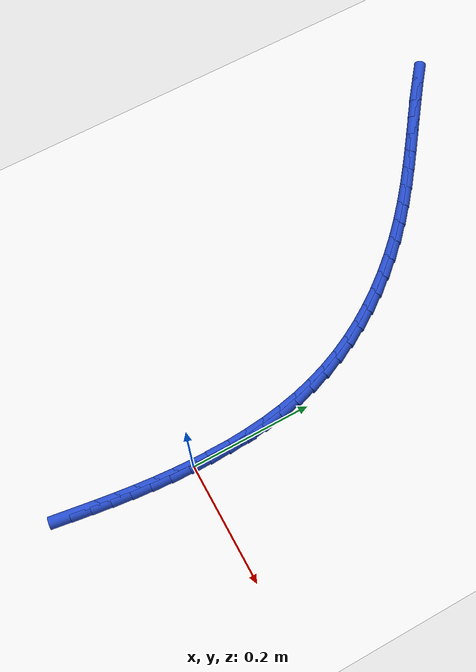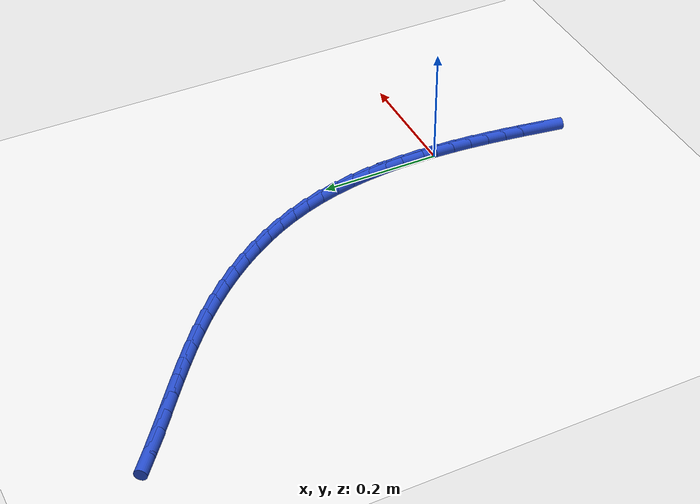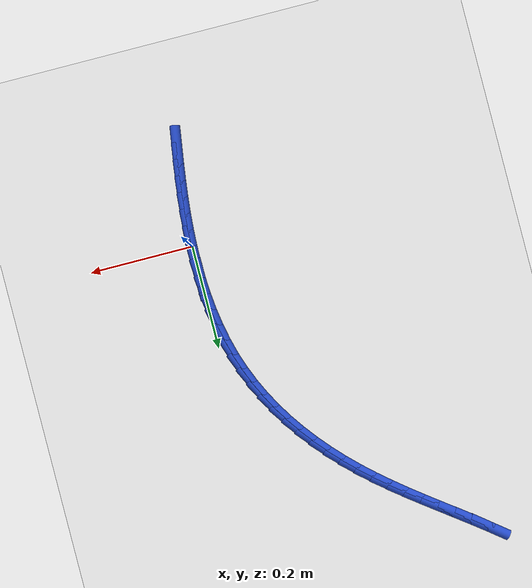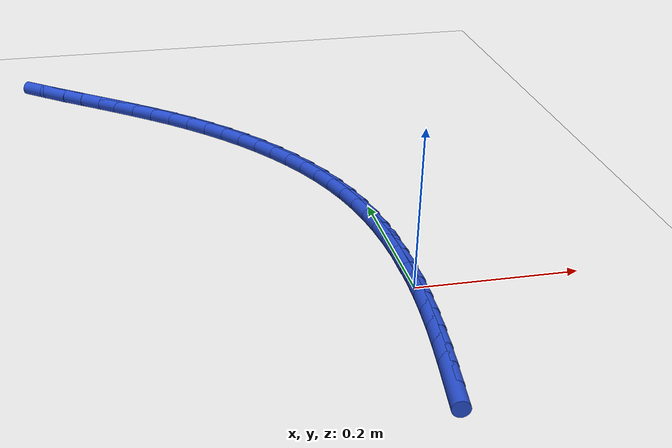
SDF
<sdf version="1.6">
 <world name="default">
  <model name="ground_plane">
   <static>1</static>
   <link name="link">
    <collision name="collision">
     <geometry><plane><normal>0 0 1</normal><size>100 100</size></plane></geometry>
     <surface><friction><ode><mu>100</mu><mu2>50</mu2></ode></friction></surface>
    </collision>
    <visual name="visual">
     <cast_shadows>0</cast_shadows>
     <geometry><plane><normal>0 0 1</normal><size>100 100</size></plane></geometry>
     <material>
      <script><uri>file://media/materials/scripts/gazebo.material</uri><name>Gazebo/WhiteGlow</name></script>
     </material>
    </visual>
   </link>
  </model>
  <model name="line">
   <link name="link_0">
    <pose>8.239936510889834e-18 -6.245004513516506e-17 0.01 0 1.57 1.556347999024885</pose>
    <collision name="collision">
     <geometry><cylinder><radius>0.01</radius><length>0.08</length></cylinder></geometry>
    </collision>
    <visual name="visual">
     <material>
      <script><name>Gazebo/Blue</name><uri>file://media/materials/scripts/gazebo.material</uri></script>
     </material>
     <geometry><cylinder><radius>0.01</radius><length>0.08</length></cylinder></geometry>
    </visual>
   </link>
   <link name="link_1">
    <pose>0.00046270269200625146 0.03202242514727677 0.01 0 1.57 -1.5501684178101491</pose>
    <collision name="collision">
     <geometry><cylinder><radius>0.01</radius><length>0.08</length></cylinder></geometry>
    </collision>
    <visual name="visual">
     <material>
      <script><name>Gazebo/Blue</name><uri>file://media/materials/scripts/gazebo.material</uri></script>
     </material>
     <geometry><cylinder><radius>0.01</radius><length>0.08</length></cylinder></geometry>
    </visual>
   </link>
   <link name="link_2">
    <pose>-0.00020141020750565265 0.0642127310881978 0.01 0 1.57 -1.511176370956596</pose>
    <collision name="collision">
     <geometry><cylinder><radius>0.01</radius><length>0.08</length></cylinder></geometry>
    </collision>
    <visual name="visual">
     <material>
      <script><name>Gazebo/Blue</name><uri>file://media/materials/scripts/gazebo.material</uri></script>
     </material>
     <geometry><cylinder><radius>0.01</radius><length>0.08</length></cylinder></geometry>
    </visual>
   </link>
   <link name="link_3">
    <pose>-0.0021238337516538714 0.09641914923511406 0.01 0 1.57 -1.4678824195072182</pose>
    <collision name="collision">
     <geometry><cylinder><radius>0.01</radius><length>0.08</length></cylinder></geometry>
    </collision>
    <visual name="visual">
     <material>
      <script><name>Gazebo/Blue</name><uri>file://media/materials/scripts/gazebo.material</uri></script>
     </material>
     <geometry><cylinder><radius>0.01</radius><length>0.08</length></cylinder></geometry>
    </visual>
   </link>
   <link name="link_4">
    <pose>-0.005436062993556576 0.12848991100037652 0.01 0 1.57 -1.4198752287430998</pose>
    <collision name="collision">
     <geometry><cylinder><radius>0.01</radius><length>0.08</length></cylinder></geometry>
    </collision>
    <visual name="visual">
     <material>
      <script><name>Gazebo/Blue</name><uri>file://media/materials/scripts/gazebo.material</uri></script>
     </material>
     <geometry><cylinder><radius>0.01</radius><length>0.08</length></cylinder></geometry>
    </visual>
   </link>
   <link name="link_5">
    <pose>-0.010269592986331934 0.16027324779633612 0.01 0 1.57 -1.3667376374764861</pose>
    <collision name="collision">
     <geometry><cylinder><radius>0.01</radius><length>0.08</length></cylinder></geometry>
    </collision>
    <visual name="visual">
     <material>
      <script><name>Gazebo/Blue</name><uri>file://media/materials/scripts/gazebo.material</uri></script>
     </material>
     <geometry><cylinder><radius>0.01</radius><length>0.08</length></cylinder></geometry>
    </visual>
   </link>
   <link name="link_6">
    <pose>-0.01675591878309812 0.191617391035344 0.01 0 1.57 -1.3080770948034395</pose>
    <collision name="collision">
     <geometry><cylinder><radius>0.01</radius><length>0.08</length></cylinder></geometry>
    </collision>
    <visual name="visual">
     <material>
      <script><name>Gazebo/Blue</name><uri>file://media/materials/scripts/gazebo.material</uri></script>
     </material>
     <geometry><cylinder><radius>0.01</radius><length>0.08</length></cylinder></geometry>
    </visual>
   </link>
   <link name="link_7">
    <pose>-0.02502653543697329 0.22237057212975092 0.01 0 1.57 -1.244849307218012</pose>
    <collision name="collision">
     <geometry><cylinder><radius>0.01</radius><length>0.08</length></cylinder></geometry>
    </collision>
    <visual name="visual">
     <material>
      <script><name>Gazebo/Blue</name><uri>file://media/materials/scripts/gazebo.material</uri></script>
     </material>
     <geometry><cylinder><radius>0.01</radius><length>0.08</length></cylinder></geometry>
    </visual>
   </link>
   <link name="link_8">
    <pose>-0.03517862759599899 0.25240611391993895 0.01 0 1.57 -1.1822459592128365</pose>
    <collision name="collision">
     <geometry><cylinder><radius>0.01</radius><length>0.08</length></cylinder></geometry>
    </collision>
    <visual name="visual">
     <material>
      <script><name>Gazebo/Blue</name><uri>file://media/materials/scripts/gazebo.material</uri></script>
     </material>
     <geometry><cylinder><radius>0.01</radius><length>0.08</length></cylinder></geometry>
    </visual>
   </link>
   <link name="link_9">
    <pose>-0.04717008699567996 0.28169920508209995 0.01 0 1.57 -1.1218946879295684</pose>
    <collision name="collision">
     <geometry><cylinder><radius>0.01</radius><length>0.08</length></cylinder></geometry>
    </collision>
    <visual name="visual">
     <material>
      <script><name>Gazebo/Blue</name><uri>file://media/materials/scripts/gazebo.material</uri></script>
     </material>
     <geometry><cylinder><radius>0.01</radius><length>0.08</length></cylinder></geometry>
    </visual>
   </link>
   <link name="link_10">
    <pose>-0.060923461678623315 0.3102508813707308 0.01 0 1.57 -1.064051859200754</pose>
    <collision name="collision">
     <geometry><cylinder><radius>0.01</radius><length>0.08</length></cylinder></geometry>
    </collision>
    <visual name="visual">
     <material>
      <script><name>Gazebo/Blue</name><uri>file://media/materials/scripts/gazebo.material</uri></script>
     </material>
     <geometry><cylinder><radius>0.01</radius><length>0.08</length></cylinder></geometry>
    </visual>
   </link>
   <link name="link_11">
    <pose>-0.07636129968322446 0.33806217854340825 0.01 0 1.57 -1.0088867973929567</pose>
    <collision name="collision">
     <geometry><cylinder><radius>0.01</radius><length>0.08</length></cylinder></geometry>
    </collision>
    <visual name="visual">
     <material>
      <script><name>Gazebo/Blue</name><uri>file://media/materials/scripts/gazebo.material</uri></script>
     </material>
     <geometry><cylinder><radius>0.01</radius><length>0.08</length></cylinder></geometry>
    </visual>
   </link>
   <link name="link_12">
    <pose>-0.09340614904787883 0.36513413235770925 0.01 0 1.57 -0.9564895008531517</pose>
    <collision name="collision">
     <geometry><cylinder><radius>0.01</radius><length>0.08</length></cylinder></geometry>
    </collision>
    <visual name="visual">
     <material>
      <script><name>Gazebo/Blue</name><uri>file://media/materials/scripts/gazebo.material</uri></script>
     </material>
     <geometry><cylinder><radius>0.01</radius><length>0.08</length></cylinder></geometry>
    </visual>
   </link>
   <link name="link_13">
    <pose>-0.11198055781098185 0.3914677785712104 0.01 0 1.57 -0.9068817135548961</pose>
    <collision name="collision">
     <geometry><cylinder><radius>0.01</radius><length>0.08</length></cylinder></geometry>
    </collision>
    <visual name="visual">
     <material>
      <script><name>Gazebo/Blue</name><uri>file://media/materials/scripts/gazebo.material</uri></script>
     </material>
     <geometry><cylinder><radius>0.01</radius><length>0.08</length></cylinder></geometry>
    </visual>
   </link>
   <link name="link_14">
    <pose>-0.13200707401092895 0.41706415294148874 0.01 0 1.57 -0.8600294756403803</pose>
    <collision name="collision">
     <geometry><cylinder><radius>0.01</radius><length>0.08</length></cylinder></geometry>
    </collision>
    <visual name="visual">
     <material>
      <script><name>Gazebo/Blue</name><uri>file://media/materials/scripts/gazebo.material</uri></script>
     </material>
     <geometry><cylinder><radius>0.01</radius><length>0.08</length></cylinder></geometry>
    </visual>
   </link>
   <link name="link_15">
    <pose>-0.1534082456861156 0.441924291226121 0.01 0 1.57 -0.8158556753269327</pose>
    <collision name="collision">
     <geometry><cylinder><radius>0.01</radius><length>0.08</length></cylinder></geometry>
    </collision>
    <visual name="visual">
     <material>
      <script><name>Gazebo/Blue</name><uri>file://media/materials/scripts/gazebo.material</uri></script>
     </material>
     <geometry><cylinder><radius>0.01</radius><length>0.08</length></cylinder></geometry>
    </visual>
   </link>
   <link name="link_16">
    <pose>-0.17610662087493728 0.46604922918268404 0.01 0 1.57 -0.7742516029679208</pose>
    <collision name="collision">
     <geometry><cylinder><radius>0.01</radius><length>0.08</length></cylinder></geometry>
    </collision>
    <visual name="visual">
     <material>
      <script><name>Gazebo/Blue</name><uri>file://media/materials/scripts/gazebo.material</uri></script>
     </material>
     <geometry><cylinder><radius>0.01</radius><length>0.08</length></cylinder></geometry>
    </visual>
   </link>
   <link name="link_17">
    <pose>-0.20002474761578937 0.48944000256875453 0.01 0 1.57 -0.7352273542439206</pose>
    <collision name="collision">
     <geometry><cylinder><radius>0.01</radius><length>0.08</length></cylinder></geometry>
    </collision>
    <visual name="visual">
     <material>
      <script><name>Gazebo/Blue</name><uri>file://media/materials/scripts/gazebo.material</uri></script>
     </material>
     <geometry><cylinder><radius>0.01</radius><length>0.08</length></cylinder></geometry>
    </visual>
   </link>
   <link name="link_18">
    <pose>-0.22508090842203893 0.5121001851655561 0.01 0 1.57 -0.7014949021345893</pose>
    <collision name="collision">
     <geometry><cylinder><radius>0.01</radius><length>0.08</length></cylinder></geometry>
    </collision>
    <visual name="visual">
     <material>
      <script><name>Gazebo/Blue</name><uri>file://media/materials/scripts/gazebo.material</uri></script>
     </material>
     <geometry><cylinder><radius>0.01</radius><length>0.08</length></cylinder></geometry>
    </visual>
   </link>
   <link name="link_19">
    <pose>-0.25110456837943995 0.5340861978786378 0.01 0 1.57 -0.675398933111013</pose>
    <collision name="collision">
     <geometry><cylinder><radius>0.01</radius><length>0.08</length></cylinder></geometry>
    </collision>
    <visual name="visual">
     <material>
      <script><name>Gazebo/Blue</name><uri>file://media/materials/scripts/gazebo.material</uri></script>
     </material>
     <geometry><cylinder><radius>0.01</radius><length>0.08</length></cylinder></geometry>
    </visual>
   </link>
   <link name="link_20">
    <pose>-0.27784124863584436 0.555504408970076 0.01 0 1.57 -0.656662161814817</pose>
    <collision name="collision">
     <geometry><cylinder><radius>0.01</radius><length>0.08</length></cylinder></geometry>
    </collision>
    <visual name="visual">
     <material>
      <script><name>Gazebo/Blue</name><uri>file://media/materials/scripts/gazebo.material</uri></script>
     </material>
     <geometry><cylinder><radius>0.01</radius><length>0.08</length></cylinder></geometry>
    </visual>
   </link>
   <link name="link_21">
    <pose>-0.3050331804852227 0.5764631441929683 0.01 0 1.57 -0.6450304318351904</pose>
    <collision name="collision">
     <geometry><cylinder><radius>0.01</radius><length>0.08</length></cylinder></geometry>
    </collision>
    <visual name="visual">
     <material>
      <script><name>Gazebo/Blue</name><uri>file://media/materials/scripts/gazebo.material</uri></script>
     </material>
     <geometry><cylinder><radius>0.01</radius><length>0.08</length></cylinder></geometry>
    </visual>
   </link>
   <link name="link_22">
    <pose>-0.33242259522154577 0.5970707293004115 0.01 0 1.57 -0.6404007062076207</pose>
    <collision name="collision">
     <geometry><cylinder><radius>0.01</radius><length>0.08</length></cylinder></geometry>
    </collision>
    <visual name="visual">
     <material>
      <script><name>Gazebo/Blue</name><uri>file://media/materials/scripts/gazebo.material</uri></script>
     </material>
     <geometry><cylinder><radius>0.01</radius><length>0.08</length></cylinder></geometry>
    </visual>
   </link>
   <link name="link_23">
    <pose>-0.3597517241387842 0.617435490045503 0.01 0 1.57 -0.6428363115628816</pose>
    <collision name="collision">
     <geometry><cylinder><radius>0.01</radius><length>0.08</length></cylinder></geometry>
    </collision>
    <visual name="visual">
     <material>
      <script><name>Gazebo/Blue</name><uri>file://media/materials/scripts/gazebo.material</uri></script>
     </material>
     <geometry><cylinder><radius>0.01</radius><length>0.08</length></cylinder></geometry>
    </visual>
   </link>
   <link name="link_24">
    <pose>-0.38676279853090895 0.6376657521813405 0.01 0 1.57 -0.6525815560505088</pose>
    <collision name="collision">
     <geometry><cylinder><radius>0.01</radius><length>0.08</length></cylinder></geometry>
    </collision>
    <visual name="visual">
     <material>
      <script><name>Gazebo/Blue</name><uri>file://media/materials/scripts/gazebo.material</uri></script>
     </material>
     <geometry><cylinder><radius>0.01</radius><length>0.08</length></cylinder></geometry>
    </visual>
   </link>
   <link name="link_25">
    <pose>-0.4131980496918904 0.6578698414610208 0.01 0 1.57 -0.6700772859273006</pose>
    <collision name="collision">
     <geometry><cylinder><radius>0.01</radius><length>0.08</length></cylinder></geometry>
    </collision>
    <visual name="visual">
     <material>
      <script><name>Gazebo/Blue</name><uri>file://media/materials/scripts/gazebo.material</uri></script>
     </material>
     <geometry><cylinder><radius>0.01</radius><length>0.08</length></cylinder></geometry>
    </visual>
   </link>
   <link name="link_274">
    <pose>-0.019895396896259646 -0.18996651665708128 0.01 0 1.57 1.4215855212161823</pose>
    <collision name="collision">
     <geometry><cylinder><radius>0.01</radius><length>0.08</length></cylinder></geometry>
    </collision>
    <visual name="visual">
     <material>
      <script><name>Gazebo/Blue</name><uri>file://media/materials/scripts/gazebo.material</uri></script>
     </material>
     <geometry><cylinder><radius>0.01</radius><length>0.08</length></cylinder></geometry>
    </visual>
   </link>
   <link name="link_275">
    <pose>-0.01508782805292595 -0.15798600825723108 0.01 0 1.57 1.434200084737425</pose>
    <collision name="collision">
     <geometry><cylinder><radius>0.01</radius><length>0.08</length></cylinder></geometry>
    </collision>
    <visual name="visual">
     <material>
      <script><name>Gazebo/Blue</name><uri>file://media/materials/scripts/gazebo.material</uri></script>
     </material>
     <geometry><cylinder><radius>0.01</radius><length>0.08</length></cylinder></geometry>
    </visual>
   </link>
   <link name="link_276">
    <pose>-0.010731962301423408 -0.12629596633621668 0.01 0 1.57 1.4509656334017171</pose>
    <collision name="collision">
     <geometry><cylinder><radius>0.01</radius><length>0.08</length></cylinder></geometry>
    </collision>
    <visual name="visual">
     <material>
      <script><name>Gazebo/Blue</name><uri>file://media/materials/scripts/gazebo.material</uri></script>
     </material>
     <geometry><cylinder><radius>0.01</radius><length>0.08</length></cylinder></geometry>
    </visual>
   </link>
   <link name="link_277">
    <pose>-0.006936523131065778 -0.09477436772201227 0.01 0 1.57 1.471795500952709</pose>
    <collision name="collision">
     <geometry><cylinder><radius>0.01</radius><length>0.08</length></cylinder></geometry>
    </collision>
    <visual name="visual">
     <material>
      <script><name>Gazebo/Blue</name><uri>file://media/materials/scripts/gazebo.material</uri></script>
     </material>
     <geometry><cylinder><radius>0.01</radius><length>0.08</length></cylinder></geometry>
    </visual>
   </link>
   <link name="link_278">
    <pose>-0.0038102340311668265 -0.06329918924259205 0.01 0 1.57 1.496500450495573</pose>
    <collision name="collision">
     <geometry><cylinder><radius>0.01</radius><length>0.08</length></cylinder></geometry>
    </collision>
    <visual name="visual">
     <material>
      <script><name>Gazebo/Blue</name><uri>file://media/materials/scripts/gazebo.material</uri></script>
     </material>
     <geometry><cylinder><radius>0.01</radius><length>0.08</length></cylinder></geometry>
    </visual>
   </link>
   <link name="link_279">
    <pose>-0.001461818491040258 -0.03174840772592921 0.01 0 1.57 1.5247849872557524</pose>
    <collision name="collision">
     <geometry><cylinder><radius>0.01</radius><length>0.08</length></cylinder></geometry>
    </collision>
    <visual name="visual">
     <material>
      <script><name>Gazebo/Blue</name><uri>file://media/materials/scripts/gazebo.material</uri></script>
     </material>
     <geometry><cylinder><radius>0.01</radius><length>0.08</length></cylinder></geometry>
    </visual>
   </link>
   <link name="link_280">
    <pose>1.951563910473908e-17 9.020562075079397e-17 0.01 0 1.57 1.556250230388627</pose>
    <collision name="collision">
     <geometry><cylinder><radius>0.01</radius><length>0.08</length></cylinder></geometry>
    </collision>
    <visual name="visual">
     <material>
      <script><name>Gazebo/Blue</name><uri>file://media/materials/scripts/gazebo.material</uri></script>
     </material>
     <geometry><cylinder><radius>0.01</radius><length>0.08</length></cylinder></geometry>
    </visual>
   </link>
   <link name="link_281">
    <pose>0.0004664979526403266 0.032068057107222596 0.01 0 1.57 -1.5511879089583174</pose>
    <collision name="collision">
     <geometry><cylinder><radius>0.01</radius><length>0.08</length></cylinder></geometry>
    </collision>
    <visual name="visual">
     <material>
      <script><name>Gazebo/Blue</name><uri>file://media/materials/scripts/gazebo.material</uri></script>
     </material>
     <geometry><cylinder><radius>0.01</radius><length>0.08</length></cylinder></geometry>
    </visual>
   </link>
   <link name="link_282">
    <pose>-0.00017104812243310058 0.06457778676776416 0.01 0 1.57 -1.5681476184543162</pose>
    <collision name="collision">
     <geometry><cylinder><radius>0.01</radius><length>0.08</length></cylinder></geometry>
    </collision>
    <visual name="visual">
     <material>
      <script><name>Gazebo/Blue</name><uri>file://media/materials/scripts/gazebo.material</uri></script>
     </material>
     <geometry><cylinder><radius>0.01</radius><length>0.08</length></cylinder></geometry>
    </visual>
   </link>
  </model>
 </world>
</sdf>
